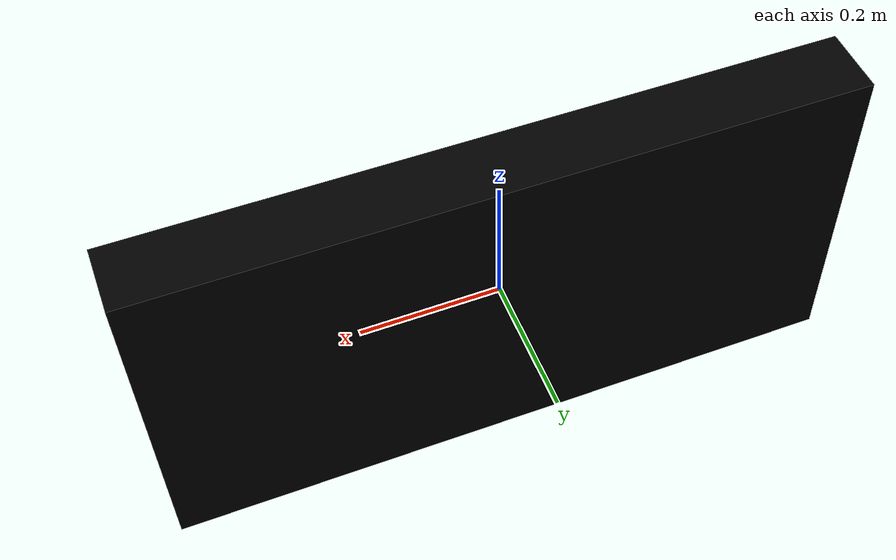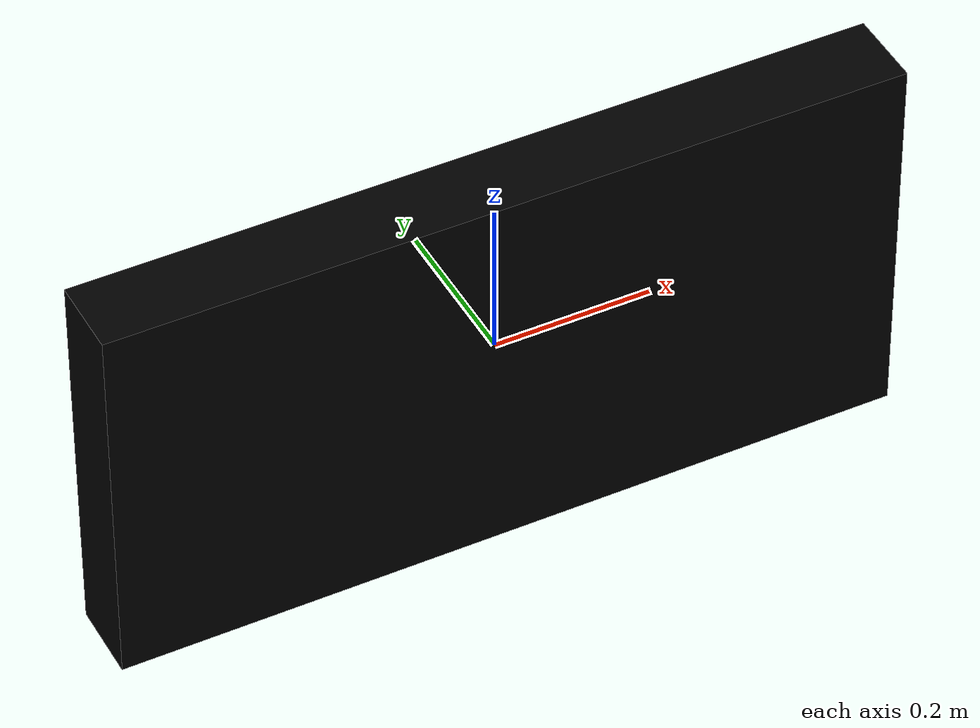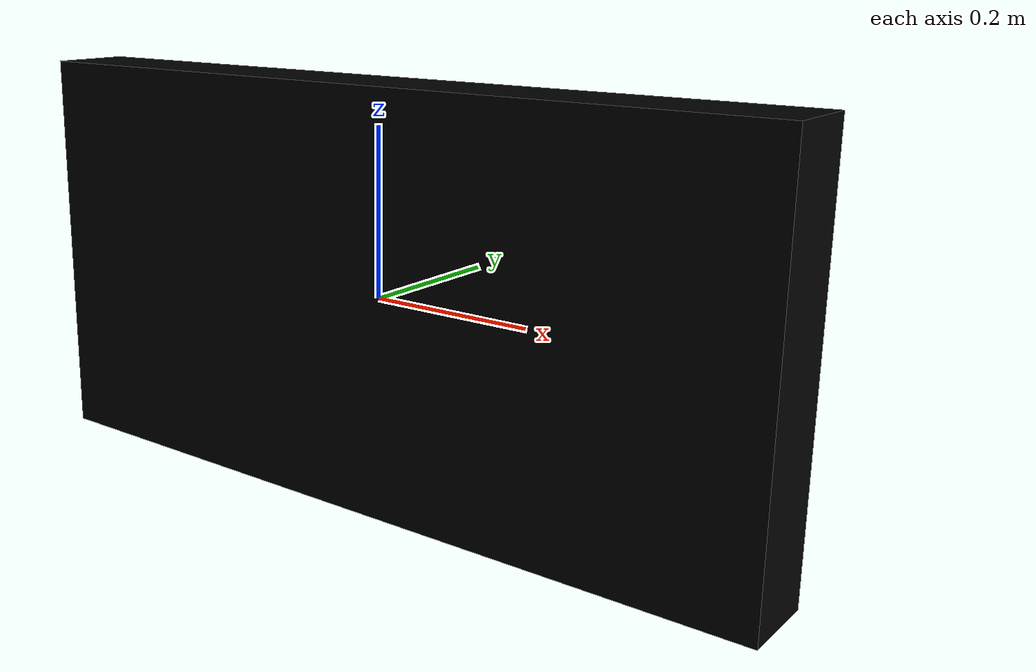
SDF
<?xml version="1.0"?>
<sdf version="1.4">
  <model name="basic_ramp">
    <static>true</static>
    <link name="link">
      <collision name="collision">
        <geometry>
          <box>
            <size>1 0.1 3</size>
          </box>
        </geometry>
        <surface>
          <friction>
            <ode>
              <mu>0.5</mu>
              <mu2>0.5</mu2>
              <fdir1>0.000000 0.000000 0.000000</fdir1>
              <slip1>0.000000</slip1>
              <slip2>0.000000</slip2>
            </ode>
          </friction>
          <bounce>
            <restitution_coefficient>0.000000</restitution_coefficient>
            <threshold>100000.000000</threshold>
          </bounce>
          <contact>
            <ode>
              <soft_cfm>0.000000</soft_cfm>
              <soft_erp>0.200000</soft_erp>
              <kp>100000.000000</kp>
              <kd>1.000000</kd>
              <max_vel>100.000000</max_vel>
              <min_depth>0.001000</min_depth>
            </ode>
          </contact>
        </surface>
      </collision>
      <visual name="visual_1">
        <pose>0 0 0  0 0 0</pose>
        <cast_shadows>true</cast_shadows>
        <geometry>
          <box>
            <size>1 0.1 0.5</size>
          </box>
        </geometry>
        <material>
          <ambient>238 156 48 1</ambient>
          <diffuse>0 0 0 1</diffuse>
          <specular>0 0 0 0</specular>
          <emissive>0 0 0 1</emissive>
        </material>
      </visual>
    </link>
  </model>
</sdf>
